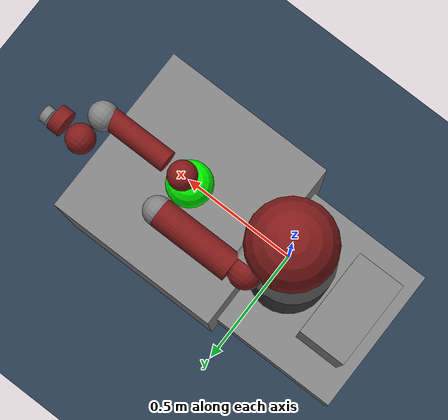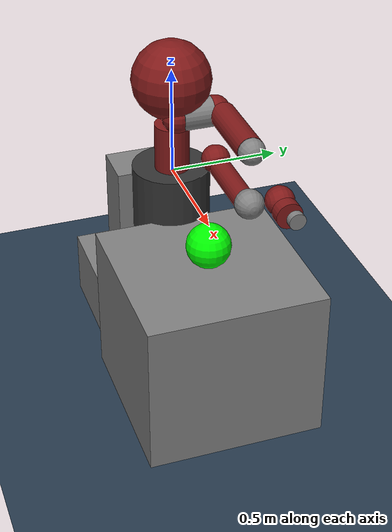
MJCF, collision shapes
<mujoco model="sawyer">
	<compiler angle="radian" meshdir="meshes/"/>
	<size nconmax="100" njmax="500"/>
	<actuator>
		<!-- Mujoco does not have velocity limit in actuator :( -->
		<position ctrllimited="true" ctrlrange="-3.0503 3.0503" joint="right_j0" kp="1" name="right_j0"/>
		<!-- TODO: kp and gear -->
		<position ctrllimited="true" ctrlrange="-3.8095 2.2736" joint="right_j1" kp="7000" name="right_j1" forcelimited="true" forcerange="-8000 8000"/>
		<position ctrllimited="true" ctrlrange="-3.0426 3.0426" joint="right_j2" kp="1000" name="right_j2" forcelimited="true" forcerange="-500 500"/>
		<position ctrllimited="true" ctrlrange="-3.0439 3.0439" joint="right_j3" kp="1000" name="right_j3" forcelimited="true" forcerange="-500 500"/>
		<position ctrllimited="true" ctrlrange="-2.9761 2.9761" joint="right_j4" kp="100" name="right_j4" forcelimited="true" forcerange="-8 8"/>
		<position ctrllimited="true" ctrlrange="-2.9761 2.9761" joint="right_j5" kp="10" name="right_j5" forcelimited="true" forcerange="-8 8"/>
		<position ctrllimited="true" ctrlrange="-4.7124 4.7124" joint="right_j6" kp="2" name="right_j6" forcelimited="true" forcerange="-8 8"/>
	</actuator>
	<asset>
		<mesh file="pedestal.stl" name="pedestal"/>
		<mesh file="base.stl" name="base"/>
		<mesh file="l0.stl" name="l0"/>
		<mesh file="head.stl" name="head"/>
		<mesh file="l1.stl" name="l1"/>
		<mesh file="l2.stl" name="l2"/>
		<mesh file="l3.stl" name="l3"/>
		<mesh file="l4.stl" name="l4"/>
		<mesh file="l5.stl" name="l5"/>
		<mesh file="l6.stl" name="l6"/>
		<texture builtin="gradient" height="256" rgb1=".9 .9 1." rgb2=".2 .3 .4" type="skybox" width="256"/>
		<texture builtin="checker" height="512" name="texplane" rgb1=".2 .3 .4" rgb2=".1 0.15 0.2" type="2d" width="512"/>
		<material name="floorplane" reflectance="0.5" texrepeat="1 1" texture="texplane" texuniform="true"/>
	</asset>
	<worldbody>
		<geom condim="3" material="floorplane" name="floor" pos="0 0 -0.913" size="3 3 .125" type="plane"/>
		<body name="table" pos="0.5 0 -0.6">
			<geom pos="0 0 0" size="0.4 0.4 0.4" type="box"/>
			<geom pos="0 0 0" size="0.399 0.399 0.399" type="box" conaffinity="0" contype="0" group="1" name="table_visual"/>
			<body name="target" pos="0 0 0.5">
				<geom pos="0 0 0" size="0.1" type="sphere" rgba="0 1 0 1" conaffinity="0" contype="0"/>
				<!-- Visualization of object in group 1 -->
				<geom pos="0 0 0" size="0.099" type="sphere" rgba="0 1 0 1" conaffinity="0" contype="0" group="1"/>
				<joint type="slide" pos="0 0 0" axis="1 0 0" name="target_x"/>
				<joint type="slide" pos="0 0 0" axis="0 1 0" name="target_y"/>
			</body>
		</body>
		<body name="object" pos="0.5 0 -0.1">
			<geom pos="0 0 0" size="0.1" type="sphere" rgba="1 0 0 1"/>
			<!-- Visualization of object in group 1 -->
			<geom pos="0 0 0" size="0.099" type="sphere" rgba="1 0 0 1" group="1" conaffinity="0" contype="0"/>
			<joint type="free" name="object_free_joint"/>
		</body>

		<light diffuse=".8 .8 .8" dir="0 -.15 -1" directional="false" pos="1 1 4.0" specular="0.3 0.3 0.3"/>
		<light diffuse=".8 .8 .8" dir="0 -.15 -1" directional="false" pos="-3. -3. 4.0" specular="0.3 0.3 0.3"/>
		<camera mode="fixed" name="camera1" pos="2.5 0 1.8" quat="0.653 0.271 0.271 0.653"/>
		<body name="base" pos="0 0 0">
			<inertial diaginertia="0 0 0" mass="0" pos="0 0 0"/>
			<body name="controller_box" pos="0 0 0">
				<inertial diaginertia="1.71363 1.27988 0.809981" mass="46.64" pos="-0.325 0 -0.38"/>
				<geom pos="-0.325 0 -0.38" size="0.11 0.2 0.265" type="box"/>
			</body>
			<body name="pedestal_feet" pos="0 0 0">
				<inertial diaginertia="8.16095 9.59375 15.0785" mass="167.09" pos="-0.1225 0 -0.758"/>
				<geom pos="-0.1225 0 -0.758" size="0.385 0.35 0.155" type="box"/>
			</body>
			<body name="torso" pos="0 0 0">
				<inertial diaginertia="1e-08 1e-08 1e-08" mass="0.0001" pos="0 0 0"/>
				<geom conaffinity="0" contype="0" group="1" rgba="0.2 0.2 0.2 1" size="0.05 0.05 0.05" type="box"/>
			</body>
			<body name="pedestal" pos="0 0 0">
				<inertial diaginertia="6.0869 5.81635 4.20915" mass="60.864" pos="0 0 0" quat="0.659267 -0.259505 -0.260945 0.655692"/>
				<geom conaffinity="0" contype="0" group="1" mesh="pedestal" pos="0.26 0.345 -0.91488" quat="0.5 0.5 -0.5 -0.5" rgba="0.2 0.2 0.2 1" type="mesh"/>
				<geom pos="-0.02 0 -0.29" rgba="0.2 0.2 0.2 1" size="0.18 0.31" type="cylinder"/>
			</body>
			<body name="right_arm_base_link" pos="0 0 0">
				<inertial diaginertia="0.00740351 0.00681776 0.00672942" mass="2.0687" pos="-0.0006241 -2.8025e-05 0.065404" quat="-0.209285 0.674441 0.227335 0.670558"/>
				<geom conaffinity="0" contype="0" group="1" mesh="base" rgba="0.5 0.1 0.1 1" type="mesh"/>
				<geom pos="0 0 0.12" rgba="0.5 0.1 0.1 1" size="0.08 0.12" type="cylinder"/>
				<body name="right_l0" pos="0 0 0.08">
					<inertial diaginertia="0.0651588 0.0510944 0.0186218" mass="5.3213" pos="0.024366 0.010969 0.14363" quat="0.894823 0.00899958 -0.170275 0.412573"/>
					<joint axis="0 0 1" limited="true" name="right_j0" pos="0 0 0" range="-3.0503 3.0503"/>
					<geom conaffinity="0" contype="0" group="1" mesh="l0" rgba="0.5 0.1 0.1 1" type="mesh"/>
					<geom pos="0.08 0 0.23" rgba="0.5 0.1 0.1 1" size="0.07"/>
					<body name="head" pos="0 0 0.2965">
						<inertial diaginertia="0.0118334 0.00827089 0.00496574" mass="1.5795" pos="0.0053207 -2.6549e-05 0.1021" quat="0.999993 7.08405e-05 -0.00359857 -0.000626247"/>
						<joint axis="0 0 1" limited="true" name="head_pan" pos="0 0 0" range="-5.0952 0.9064"/>
						<geom conaffinity="0" contype="0" group="1" mesh="head" rgba="0.5 0.1 0.1 1" type="mesh"/>
						<geom pos="0 0 0.08" rgba="0.5 0.1 0.1 1" size="0.18"/>
						<body name="screen" pos="0.03 0 0.105" quat="0.5 0.5 0.5 0.5">
							<inertial diaginertia="1e-08 1e-08 1e-08" mass="0.0001" pos="0 0 0"/>
							<geom conaffinity="0" contype="0" group="1" rgba="0.2 0.2 0.2 1" size="0.12 0.07 0.001" type="box"/>
							<geom rgba="0.2 0.2 0.2 1" size="0.001"/>
						</body>
						<body name="head_camera" pos="0.0228027 0 0.216572" quat="0.342813 -0.618449 0.618449 -0.342813">
							<inertial diaginertia="0 0 0" mass="0" pos="0.0228027 0 0.216572" quat="0.342813 -0.618449 0.618449 -0.342813"/>
						</body>
					</body>
					<body name="right_torso_itb" pos="-0.055 0 0.22" quat="0.707107 0 -0.707107 0">
						<inertial diaginertia="1e-08 1e-08 1e-08" mass="0.0001" pos="0 0 0"/>
					</body>
					<body name="right_l1" pos="0.081 0.05 0.237" quat="0.5 -0.5 0.5 0.5">
						<inertial diaginertia="0.0224339 0.0221624 0.0097097" mass="4.505" pos="-0.0030849 -0.026811 0.092521" quat="0.424888 0.891987 0.132364 -0.0794296"/>
						<joint axis="0 0 1" limited="true" name="right_j1" pos="0 0 0" range="-3.8095 2.2736"/>
						<geom conaffinity="0" contype="0" group="1" mesh="l1" rgba="0.5 0.1 0.1 1" type="mesh"/>
						<geom pos="0 0 0.1225" rgba="0.5 0.1 0.1 1" size="0.07"/>
						<body name="right_l2" pos="0 -0.14 0.1425" quat="0.707107 0.707107 0 0">
							<inertial diaginertia="0.0257928 0.025506 0.00292515" mass="1.745" pos="-0.00016044 -0.014967 0.13582" quat="0.707831 -0.0524761 0.0516007 0.702537"/>
							<joint axis="0 0 1" limited="true" name="right_j2" pos="0 0 0" range="-3.0426 3.0426"/>
							<geom conaffinity="0" contype="0" group="1" mesh="l2" rgba="0.5 0.1 0.1 1" type="mesh"/>
							<geom pos="0 0 0.08" rgba="0.5 0.1 0.1 1" size="0.06 0.17" type="cylinder"/>
							<body name="right_l3" pos="0 -0.042 0.26" quat="0.707107 -0.707107 0 0">
								<inertial diaginertia="0.0102404 0.0096997 0.00369622" mass="2.5097" pos="-0.0048135 -0.0281 -0.084154" quat="0.902999 0.385391 -0.0880901 0.168247"/>
								<joint axis="0 0 1" limited="true" name="right_j3" pos="0 0 0" range="-3.0439 3.0439"/>
								<geom conaffinity="0" contype="0" group="1" mesh="l3" rgba="0.5 0.1 0.1 1" type="mesh"/>
								<geom pos="0 -0.01 -0.12" rgba="0.5 0.1 0.1 1" size="0.06"/>
								<body name="right_l4" pos="0 -0.125 -0.1265" quat="0.707107 0.707107 0 0">
									<inertial diaginertia="0.0136549 0.0135493 0.00127353" mass="1.1136" pos="-0.0018844 0.0069001 0.1341" quat="0.803612 0.031257 -0.0298334 0.593582"/>
									<joint axis="0 0 1" limited="true" name="right_j4" pos="0 0 0" range="-2.9761 2.9761"/>
									<geom conaffinity="0" contype="0" group="1" mesh="l4" rgba="0.5 0.1 0.1 1" type="mesh"/>
									<geom pos="0 0 0.11" rgba="0.5 0.1 0.1 1" size="0.045 0.15" type="cylinder"/>
									<body name="right_arm_itb" pos="-0.055 0 0.075" quat="0.707107 0 -0.707107 0">
										<inertial diaginertia="1e-08 1e-08 1e-08" mass="0.0001" pos="0 0 0"/>
									</body>
									<body name="right_l5" pos="0 0.031 0.275" quat="0.707107 -0.707107 0 0">
										<inertial diaginertia="0.00474131 0.00422857 0.00190672" mass="1.5625" pos="0.0061133 -0.023697 0.076416" quat="0.404076 0.9135 0.0473125 0.00158335"/>
										<joint axis="0 0 1" limited="true" name="right_j5" pos="0 0 0" range="-2.9761 2.9761" damping="0.2"/>
										<geom conaffinity="0" contype="0" group="1" mesh="l5" rgba="0.5 0.1 0.1 1" type="mesh"/>
										<geom pos="0 0 0.1" rgba="0.5 0.1 0.1 1" size="0.06"/>
										<body name="right_hand_camera" pos="0.039552 -0.033 0.0695" quat="0.707107 0 0.707107 0">
											<inertial diaginertia="0 0 0" mass="0" pos="0.039552 -0.033 0.0695" quat="0.707107 0 0.707107 0"/>
										</body>
										<body name="right_wrist" pos="0 0 0.10541" quat="0.707107 0.707107 0 0">
											<inertial diaginertia="0 0 0" mass="0" pos="0 0 0.10541" quat="0.707107 0.707107 0 0"/>
										</body>
										<body name="right_l6" pos="0 -0.11 0.1053" quat="0.0616248 0.06163 -0.704416 0.704416">
											<inertial diaginertia="0.000360258 0.000311068 0.000214974" mass="0.3292" pos="-8.0726e-06 0.0085838 -0.0049566" quat="0.479044 0.515636 -0.513069 0.491322"/>
											<joint axis="0 0 1" limited="true" name="right_j6" pos="0 0 0" range="-4.7124 4.7124" damping="0.1"/>
											<geom conaffinity="0" contype="0" group="1" mesh="l6" rgba="0.5 0.1 0.1 1" type="mesh"/>
											<geom pos="0 0.015 -0.01" rgba="0.5 0.1 0.1 1" size="0.055 0.025" type="cylinder"/>
											<body name="right_hand" pos="0 0 0.0245" quat="0.707107 0 0 0.707107">
												<inertial diaginertia="1e-08 1e-08 1e-08" mass="1e-08" pos="1e-08 1e-08 1e-08" quat="0.820473 0.339851 -0.17592 0.424708"/>
												<geom pos="0 0 0.02" size="0.035 0.015" type="cylinder"/>
											</body>
										</body>
									</body>
									<body name="right_l4_2" pos="0 0 0">
										<inertial diaginertia="1e-08 1e-08 1e-08" mass="1e-08" pos="1e-08 1e-08 1e-08" quat="0.820473 0.339851 -0.17592 0.424708"/>
										<geom pos="0 0.01 0.26" size="0.06"/>
									</body>
								</body>
							</body>
							<body name="right_l2_2" pos="0 0 0">
								<inertial diaginertia="1e-08 1e-08 1e-08" mass="1e-08" pos="1e-08 1e-08 1e-08" quat="0.820473 0.339851 -0.17592 0.424708"/>
								<geom pos="0 0 0.26" size="0.06"/>
							</body>
						</body>
						<body name="right_l1_2" pos="0 0 0">
							<inertial diaginertia="1e-08 1e-08 1e-08" mass="1e-08" pos="1e-08 1e-08 1e-08" quat="0.820473 0.339851 -0.17592 0.424708"/>
							<geom pos="0 0 0.035" size="0.07 0.07" type="cylinder"/>
						</body>
					</body>
				</body>
			</body>
		</body>
	</worldbody>
</mujoco>
